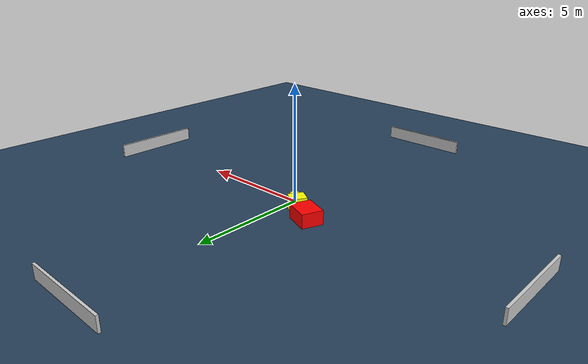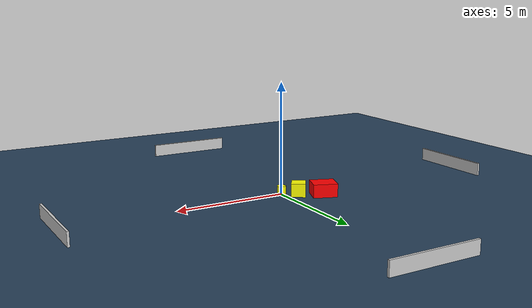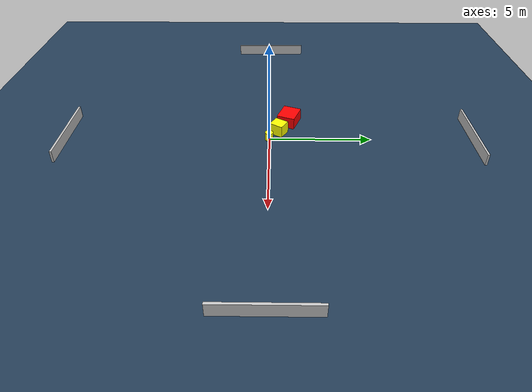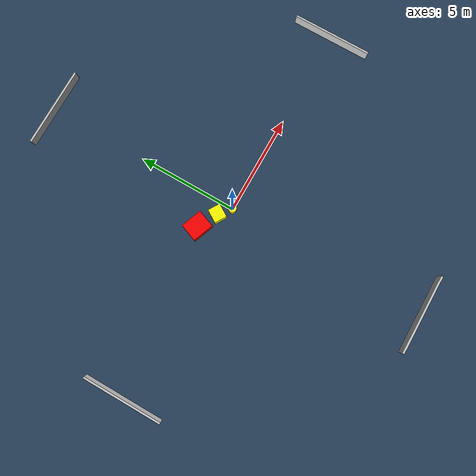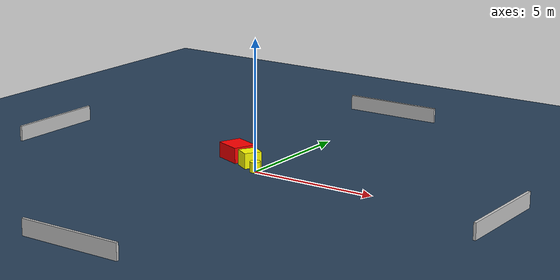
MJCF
<?xml version="1.0" ?>
<mujoco model="generated_environment">
  <option timestep="0.01" integrator="RK4" cone="elliptic"/>
  <default>
    <geom density="1"/>
  </default>
  <asset>
    <texture builtin="gradient" height="3072" name="skybox" rgb1="0.3 0.5 0.7" rgb2="0 0 0" type="skybox" width="512"/>
    <texture builtin="checker" height="300" name="groundplane" rgb1="0.2 0.3 0.4" rgb2="0.1 0.2 0.3" type="2d" width="300"/>
    <material name="groundplane" reflectance="0.2" texrepeat="5 5" texture="groundplane"/>
  </asset>
  <worldbody>
    <light dir="0 0 -1" directional="true" pos="0 0 1.5"/>
    <geom condim="3" friction="0.5 0.005 0.001" material="groundplane" name="floor" pos="0 0 0" size="0 0 0.05" type="plane"/>
    <body name="walls">
      <geom name="wall_1" condim="4" pos="-10.0 0.0 0.3" rgba="0.800000011920929 0.800000011920929 0.800000011920929 1.0" size="0.05 2.0 0.3" type="box"/>
      <geom name="wall_2" condim="4" pos="10.0 0.0 0.3" rgba="0.800000011920929 0.800000011920929 0.800000011920929 1.0" size="0.05 2.0 0.3" type="box"/>
      <geom name="wall_3" condim="4" pos="0.0 -10.0 0.3" rgba="0.800000011920929 0.800000011920929 0.800000011920929 1.0" size="2.0 0.05 0.3" type="box"/>
      <geom name="wall_4" condim="4" pos="0.0 10.0 0.3" rgba="0.800000011920929 0.800000011920929 0.800000011920929 1.0" size="2.0 0.05 0.3" type="box"/>
    </body>
    <body name="robot">
      <joint name="joint_x" type="slide" pos="0 0 0" axis="1 0 0"/>
      <joint name="joint_y" type="slide" pos="0 0 0" axis="0 1 0"/>
      <geom name="robot" type="cylinder" pos="0.0 0.0 0.2" size="0.2 0.2 0.0" mass="5.0" friction="1.0 0.005 0.0001" condim="4" rgba="1.0 1.0 0.0 1.0"/>
    </body>
    <body name="obstacle_1_movable">
      <geom name="obstacle_1_movable" condim="4" pos="-0.5876954943588599 0.4842176199807549 0.3" euler="0 0 148.22126466478096" friction="0.0 0.005 0.001" rgba="1.0 1.0 0.0 1.0" size="0.3133493126303941 0.3449909005258541 0.3" type="box" mass="0.1"/>
      <joint type="free"/>
    </body>
    <body name="obstacle_2_static">
      <geom name="obstacle_2_static" condim="4" pos="-1.56274586022424 1.0119693580167037 0.3" euler="0 0 338.93955405508115" friction="0.0 0.005 0.001" rgba="1.0 0.0 0.0 1.0" size="0.5434730657254718 0.4554016057954908 0.3" type="box"/>
    </body>
  </worldbody>
  <actuator>
    <motor name="actuator_x" joint="joint_x" gear="1" ctrlrange="-1 1"/>
    <motor name="actuator_y" joint="joint_y" gear="1" ctrlrange="-1 1"/>
  </actuator>
</mujoco>
